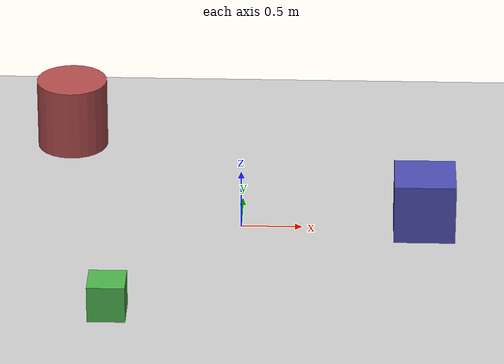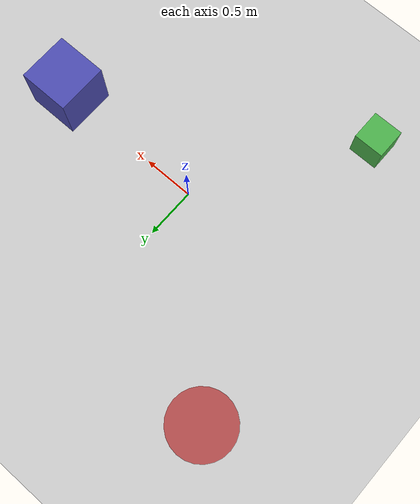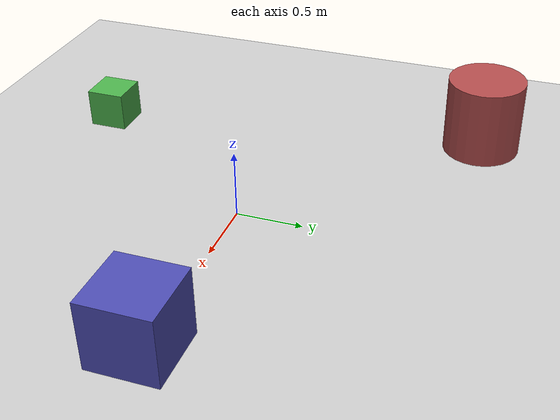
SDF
<?xml version="1.0" ?>
<sdf version="1.6">
  <world name="phase2_minimal_world">

    <!-- ===== 物理エンジン設定(最軽量) ===== -->
    <physics type="ode">
      <max_step_size>0.01</max_step_size>
      <real_time_factor>1.0</real_time_factor>
      <real_time_update_rate>100</real_time_update_rate>
    </physics>

    <!-- ===== 太陽光(簡易) ===== -->
    <include>
      <uri>model://sun</uri>
    </include>

    <!-- ===== 地面(5m × 5m シンプルな平面) ===== -->
    <model name="ground_plane">
      <static>true</static>
      <link name="link">
        <collision name="collision">
          <geometry>
            <plane>
              <normal>0 0 1</normal>
              <size>10 10</size>
            </plane>
          </geometry>
        </collision>
        <visual name="visual">
          <geometry>
            <plane>
              <normal>0 0 1</normal>
              <size>10 10</size>
            </plane>
          </geometry>
          <material>
            <ambient>0.8 0.8 0.8 1</ambient>
            <diffuse>0.8 0.8 0.8 1</diffuse>
          </material>
        </visual>
      </link>
    </model>

    <!-- ===== 障害物1: シンプルな箱 ===== -->
    <model name="obstacle_box_1">
      <static>true</static>
      <pose>1.5 0 0.25 0 0 0</pose>
      <link name="link">
        <collision name="collision">
          <geometry>
            <box>
              <size>0.5 0.5 0.5</size>
            </box>
          </geometry>
        </collision>
        <visual name="visual">
          <geometry>
            <box>
              <size>0.5 0.5 0.5</size>
            </box>
          </geometry>
          <material>
            <ambient>0.3 0.3 0.7 1</ambient>
            <diffuse>0.3 0.3 0.7 1</diffuse>
          </material>
        </visual>
      </link>
    </model>

    <!-- ===== 障害物2: 円柱 ===== -->
    <model name="obstacle_cylinder_1">
      <static>true</static>
      <pose>-1.5 1.5 0.3 0 0 0</pose>
      <link name="link">
        <collision name="collision">
          <geometry>
            <cylinder>
              <radius>0.3</radius>
              <length>0.6</length>
            </cylinder>
          </geometry>
        </collision>
        <visual name="visual">
          <geometry>
            <cylinder>
              <radius>0.3</radius>
              <length>0.6</length>
            </cylinder>
          </geometry>
          <material>
            <ambient>0.7 0.3 0.3 1</ambient>
            <diffuse>0.7 0.3 0.3 1</diffuse>
          </material>
        </visual>
      </link>
    </model>

    <!-- ===== 障害物3: 小さい箱 ===== -->
    <model name="obstacle_box_2">
      <static>true</static>
      <pose>-1.0 -1.5 0.15 0 0 0</pose>
      <link name="link">
        <collision name="collision">
          <geometry>
            <box>
              <size>0.3 0.3 0.3</size>
            </box>
          </geometry>
        </collision>
        <visual name="visual">
          <geometry>
            <box>
              <size>0.3 0.3 0.3</size>
            </box>
          </geometry>
          <material>
            <ambient>0.3 0.7 0.3 1</ambient>
            <diffuse>0.3 0.7 0.3 1</diffuse>
          </material>
        </visual>
      </link>
    </model>

    <!-- ===== シーン設定 ===== -->
    <scene>
      <ambient>0.4 0.4 0.4 1</ambient>
      <background>0.7 0.7 0.7 1</background>
      <shadows>false</shadows> <!-- 影オフで軽量化 -->
    </scene>

    <!-- ===== GUI設定(軽量) ===== -->
    <gui fullscreen='0'>
      <camera name='user_camera'>
        <pose>0 -5 3 0 0.4 1.57</pose>
        <view_controller>orbit</view_controller>
      </camera>
    </gui>

  </world>
</sdf>
